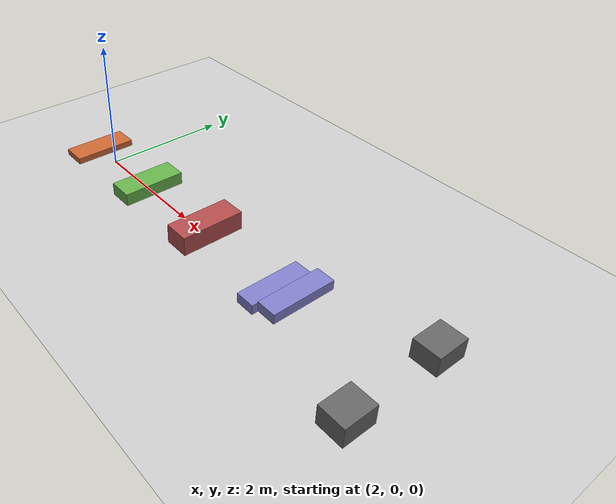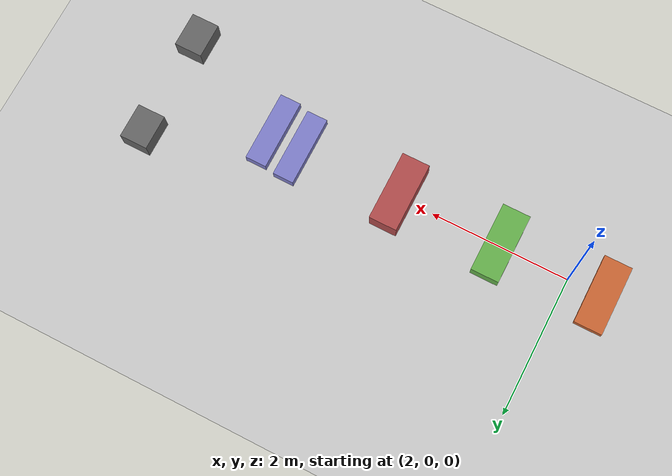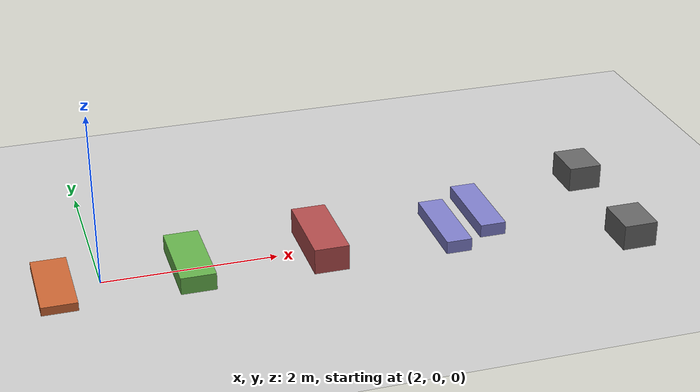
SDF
<?xml version="1.0" ?>
<sdf version="1.6">
  <world name="parkour_simple">

    <!-- Physics settings -->
    <physics type="ode">
      <max_step_size>0.001</max_step_size>
      <real_time_factor>1</real_time_factor>
      <real_time_update_rate>1000</real_time_update_rate>
      <gravity>0 0 -9.81</gravity>
    </physics>

    <!-- Scene -->
    <scene>
      <ambient>0.5 0.5 0.5 1</ambient>
      <background>0.7 0.7 0.7 1</background>
      <shadows>true</shadows>
    </scene>

    <!-- Sun light -->
    <include>
      <uri>model://sun</uri>
    </include>

    <!-- Ground plane -->
    <model name="ground_plane">
      <static>true</static>
      <link name="link">
        <collision name="collision">
          <geometry>
            <plane>
              <normal>0 0 1</normal>
              <size>100 100</size>
            </plane>
          </geometry>
          <surface>
            <friction>
              <ode>
                <mu>0.8</mu>
                <mu2>0.8</mu2>
              </ode>
            </friction>
          </surface>
        </collision>
        <visual name="visual">
          <geometry>
            <plane>
              <normal>0 0 1</normal>
              <size>100 100</size>
            </plane>
          </geometry>
          <material>
            <ambient>0.8 0.8 0.8 1</ambient>
            <diffuse>0.8 0.8 0.8 1</diffuse>
            <specular>0.1 0.1 0.1 1</specular>
          </material>
        </visual>
      </link>
    </model>

    <!-- Obstacle 1: Low box (10cm height) at 1.5m -->
    <model name="obstacle_1">
      <pose>1.5 0 0.05 0 0 0</pose>
      <static>true</static>
      <link name="link">
        <collision name="collision">
          <geometry>
            <box>
              <size>0.4 1.0 0.1</size>
            </box>
          </geometry>
        </collision>
        <visual name="visual">
          <geometry>
            <box>
              <size>0.4 1.0 0.1</size>
            </box>
          </geometry>
          <material>
            <ambient>0.6 0.3 0.1 1</ambient>
            <diffuse>0.8 0.4 0.2 1</diffuse>
          </material>
        </visual>
      </link>
    </model>

    <!-- Obstacle 2: Medium box (20cm height) at 3m -->
    <model name="obstacle_2">
      <pose>3.0 0 0.1 0 0 0</pose>
      <static>true</static>
      <link name="link">
        <collision name="collision">
          <geometry>
            <box>
              <size>0.4 1.0 0.2</size>
            </box>
          </geometry>
        </collision>
        <visual name="visual">
          <geometry>
            <box>
              <size>0.4 1.0 0.2</size>
            </box>
          </geometry>
          <material>
            <ambient>0.3 0.5 0.2 1</ambient>
            <diffuse>0.4 0.7 0.3 1</diffuse>
          </material>
        </visual>
      </link>
    </model>

    <!-- Obstacle 3: High box (30cm height) at 4.5m -->
    <model name="obstacle_3">
      <pose>4.5 0 0.15 0 0 0</pose>
      <static>true</static>
      <link name="link">
        <collision name="collision">
          <geometry>
            <box>
              <size>0.4 1.0 0.3</size>
            </box>
          </geometry>
        </collision>
        <visual name="visual">
          <geometry>
            <box>
              <size>0.4 1.0 0.3</size>
            </box>
          </geometry>
          <material>
            <ambient>0.5 0.2 0.2 1</ambient>
            <diffuse>0.7 0.3 0.3 1</diffuse>
          </material>
        </visual>
      </link>
    </model>

    <!-- Obstacle 4: Steps (15cm each) at 6m -->
    <model name="step_1">
      <pose>6.0 0 0.075 0 0 0</pose>
      <static>true</static>
      <link name="link">
        <collision name="collision">
          <geometry>
            <box>
              <size>0.3 1.0 0.15</size>
            </box>
          </geometry>
        </collision>
        <visual name="visual">
          <geometry>
            <box>
              <size>0.3 1.0 0.15</size>
            </box>
          </geometry>
          <material>
            <ambient>0.4 0.4 0.6 1</ambient>
            <diffuse>0.5 0.5 0.8 1</diffuse>
          </material>
        </visual>
      </link>
    </model>

    <model name="step_2">
      <pose>6.4 0 0.225 0 0 0</pose>
      <static>true</static>
      <link name="link">
        <collision name="collision">
          <geometry>
            <box>
              <size>0.3 1.0 0.15</size>
            </box>
          </geometry>
        </collision>
        <visual name="visual">
          <geometry>
            <box>
              <size>0.3 1.0 0.15</size>
            </box>
          </geometry>
          <material>
            <ambient>0.4 0.4 0.6 1</ambient>
            <diffuse>0.5 0.5 0.8 1</diffuse>
          </material>
        </visual>
      </link>
    </model>

    <!-- Obstacle 5: Narrow gap (0.5m width) at 8m -->
    <model name="wall_left">
      <pose>8.0 0.75 0.15 0 0 0</pose>
      <static>true</static>
      <link name="link">
        <collision name="collision">
          <geometry>
            <box>
              <size>0.4 0.5 0.3</size>
            </box>
          </geometry>
        </collision>
        <visual name="visual">
          <geometry>
            <box>
              <size>0.4 0.5 0.3</size>
            </box>
          </geometry>
          <material>
            <ambient>0.3 0.3 0.3 1</ambient>
            <diffuse>0.4 0.4 0.4 1</diffuse>
          </material>
        </visual>
      </link>
    </model>

    <model name="wall_right">
      <pose>8.0 -0.75 0.15 0 0 0</pose>
      <static>true</static>
      <link name="link">
        <collision name="collision">
          <geometry>
            <box>
              <size>0.4 0.5 0.3</size>
            </box>
          </geometry>
        </collision>
        <visual name="visual">
          <geometry>
            <box>
              <size>0.4 0.5 0.3</size>
            </box>
          </geometry>
          <material>
            <ambient>0.3 0.3 0.3 1</ambient>
            <diffuse>0.4 0.4 0.4 1</diffuse>
          </material>
        </visual>
      </link>
    </model>

  </world>
</sdf>
